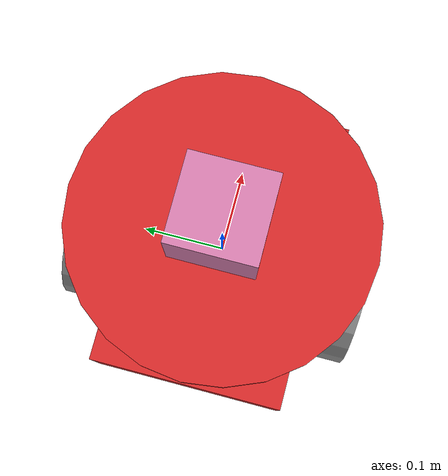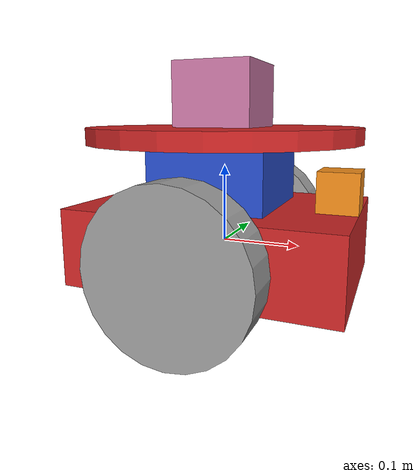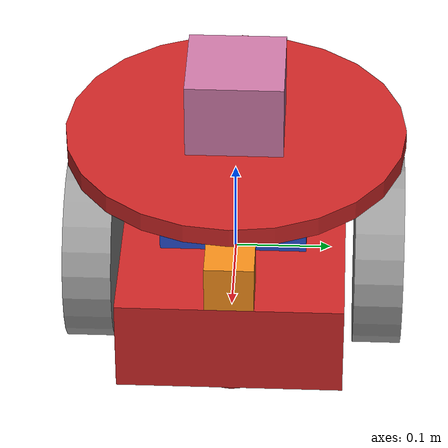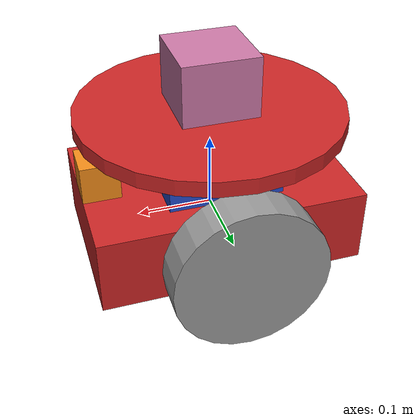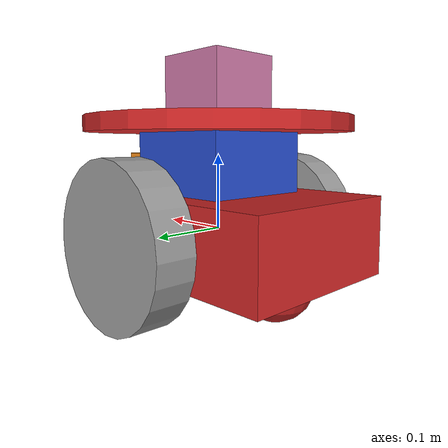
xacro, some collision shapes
<?xml version='1.0'?>

<robot name="my_robot" xmlns:xacro="http://www.ros.org/wiki/xacro">
<xacro:include filename="$(find my_robot)/urdf/my_robot.gazebo" />

  <material name="blue">
    <color rgba="0.203125 0.23828125 0.28515625 1.0"/>
  </material>
  <material name="grey">
    <color rgba="0.2 0.2 0.2 1.0"/>
  </material>
  <material name="orange">
    <color rgba="1.0 0.423529411765 0.0392156862745 1.0"/>
  </material>
  <material name="red">
    <color rgba="0.80078125 0.12890625 0.1328125 1.0"/>
  </material>
  <material name="white">
    <color rgba="0.95 0.95 0.95 0.95"/>
  </material>

  <gazebo reference="chassis">
    <material>Gazebo/Red</material>
  </gazebo>
  <gazebo reference="camera">
    <material>Gazebo/Orange</material>
  </gazebo>
  <gazebo reference="right_wheel">
    <material>Gazebo/Grey</material>
  </gazebo>
  <gazebo reference="left_wheel">
    <material>Gazebo/Grey</material>
  </gazebo>
  <gazebo reference="block_on_chassis">
    <material>Gazebo/Blue</material>
  </gazebo>
  <gazebo reference="disk_on_block">
    <material>Gazebo/Red</material>
  </gazebo>
  <gazebo reference="right_wheel">
    <material>Gazebo/Grey</material>
  </gazebo>
  <gazebo reference="left_wheel">
    <material>Gazebo/Grey</material>
  </gazebo>

  <link name="robot_footprint"></link>

  <joint name="robot_footprint_joint" type="fixed">
    <origin xyz="0 0 0" rpy="0 0 0" />
    <parent link="robot_footprint"/>
    <child link="chassis" />
  </joint>

  <joint type="continuous" name="left_wheel_hinge">
    <origin xyz="0 0.15 0" rpy="0 0 0"/>
    <child link="left_wheel"/>
    <parent link="chassis"/>
    <axis xyz="0 1 0" rpy="0 0 0"/>
    <limit effort="10000" velocity="1000"/>
    <dynamics damping="1.0" friction="1.0"/>
  </joint>

  <joint type="continuous" name="right_wheel_hinge">
    <origin xyz="0 -0.15 0" rpy="0 0 0"/>
    <child link="right_wheel"/>
    <parent link="chassis"/>
    <axis xyz="0 1 0" rpy="0 0 0"/>
    <limit effort="10000" velocity="1000"/>
    <dynamics damping="1.0" friction="1.0"/>
  </joint>

  <joint name="camera_joint" type="fixed">
    <origin xyz="0.15 0 0.075" rpy="0 0 0" />
    <parent link="chassis"/>
    <axis xyz="0 1 0" rpy="0 0 0"/>
    <child link="camera" />
  </joint>

  <joint name="hokuyo_joint" type="fixed">
    <origin xyz="0 0 0.09" rpy="0 0 0" />
    <parent link="block_on_chassis"/>
    <axis xyz="0 1 0" rpy="0 0 0"/>
    <child link="hokuyo" />
  </joint>

  <joint name="block_on_chasis_joint" type="fixed">
    <origin xyz="0.0 0 0.09" rpy="0 0 0" />
    <parent link="chassis"/>
    <axis xyz="0 1 0" rpy="0 0 0"/>
    <child link="block_on_chassis" />
  </joint>

  <joint name="disk_on_block_joint" type="fixed">
    <origin xyz="0 0 0.05" rpy="0 0 0"/>
    <child link="disk_on_block"/>
    <parent link="block_on_chassis"/>
    <axis xyz="0 1 0" rpy="0 0 0"/>
  </joint>

  <joint name="camera_optical_joint" type="fixed">
    <origin xyz="0 0 0" rpy="-1.5707 0 -1.5707"/>
    <parent link="camera"/>
    <child link="camera_optical"/>
  </joint>

  <link name="camera_optical">
  </link>

  <link name='chassis'>
    <pose>0 0 0.1 0 0 0</pose>

    <inertial>
      <mass value="15.0"/>
      <origin xyz="0.0 0 0" rpy=" 0 0 0"/>
      <inertia
          ixx="0.1" ixy="0" ixz="0"
          iyy="0.1" iyz="0"
          izz="0.1"
      />
    </inertial>

    <collision name='collision'>
      <origin xyz="0 0 0" rpy=" 0 0 0"/>
      <geometry>
        <box size=".35 .23 .1"/>
      </geometry>
    </collision>

    <visual name='chassis_visual'>
      <origin xyz="0 0 0" rpy=" 0 0 0"/>
      <geometry>
        <box size=".35 .23 .1"/>
      </geometry>
    </visual>

    <collision name='back_caster_collision'>
      <origin xyz="-0.10 0 -0.05" rpy=" 0 0 0"/>
      <geometry>
        <sphere radius="0.0499"/>
      </geometry>
    </collision>

    <visual name='back_caster_visual'>
      <origin xyz="-0.10 0 -0.05" rpy=" 0 0 0"/>
      <geometry>
        <sphere radius="0.05"/>
      </geometry>
    </visual>

    <collision name='front_caster_collision'>
      <origin xyz="0.10 0 -0.05" rpy=" 0 0 0"/>
      <geometry>
        <sphere radius="0.0499"/>
      </geometry>
    </collision>

    <visual name='front_caster_visual'>
      <origin xyz="0.10 0 -0.05" rpy=" 0 0 0"/>
      <geometry>
        <sphere radius="0.05"/>
      </geometry>
    </visual>
  </link>

  <link name='left_wheel'>

  <inertial>
      <mass value="5.0"/>
      <origin xyz="0 0 0" rpy="0 1.5707 1.5707" />
      <inertia
          ixx="0.1" ixy="0" ixz="0"
          iyy="0.1" iyz="0"
          izz="0.1"
      />
    </inertial>

  <collision name='left_wheel_collision'>
      <origin xyz="0 0 0" rpy="0 1.5707 1.5707" />
      <geometry>
        <cylinder radius="0.1" length="0.05"/>
      </geometry>
    </collision>

  <visual name='left_wheel_visual'>
      <origin xyz="0 0 0" rpy="0 1.5707 1.5707" />
      <geometry>
        <cylinder radius="0.1" length="0.05"/>
      </geometry>
    </visual>
  </link>

  <link name='right_wheel'>

  <inertial>
      <mass value="5.0"/>
      <origin xyz="0 0 0" rpy="0 1.5707 1.5707" />
      <inertia
          ixx="0.1" ixy="0" ixz="0"
          iyy="0.1" iyz="0"
          izz="0.1"
      />
    </inertial>

  <collision name='right_wheel_collision'>
      <origin xyz="0 0 0" rpy="0 1.5707 1.5707" />
      <geometry>
        <cylinder radius="0.1" length="0.05"/>
      </geometry>
    </collision>

  <visual name='right_wheel_visual'>
      <origin xyz="0 0 0" rpy="0 1.5707 1.5707" />
      <geometry>
        <cylinder radius="0.1" length="0.05"/>
      </geometry>
    </visual>
  </link>

  <link name='camera'>

  <inertial>
      <mass value="0.1"/>
      <origin xyz="0 0 0" rpy="0 0 0" />
      <inertia
          ixx="0.000001" ixy="0" ixz="0"
          iyy="0.000001" iyz="0"
          izz="0.000001"
      />
    </inertial>

  <collision name='camera_collision'>
      <origin xyz="0 0 0" rpy="0 0 0" />
      <geometry>
        <box size=".05 .05 .05"/>
      </geometry>
    </collision>

  <visual name='camera_visual'>
      <origin xyz="0 0 0" rpy="0 0 0" />
      <geometry>
        <box size=".05 .05 .05"/>
      </geometry>
    </visual>
  </link>

  <link name='hokuyo'>

  <inertial>
      <mass value=".00001"/>
      <origin xyz="0 0 0" rpy="0 0 0" />
      <inertia
          ixx="0.000001" ixy="0" ixz="0"
          iyy="0.000001" iyz="0"
          izz="0.000001"
      />
    </inertial>

  <collision name='hokuyo_collision'>
      <origin xyz="0 0 0" rpy="0 0 0" />
      <geometry>
        <box size="0.1 0.1 0.1"/>
      </geometry>
    </collision>

  <visual name='hokuyo_visual'>
      <origin xyz="0 0 0" rpy="0 0 0" />
      <geometry>
        <mesh filename = "package://my_robot/meshes/hokuyo.dae"/>
      </geometry>
    </visual>
  </link>

  <link name='block_on_chassis'>
    <pose>0 0 0.1 0 0 0</pose>

    <inertial>
      <mass value="2.0"/>
      <origin xyz="0.0 0 0" rpy=" 0 0 0"/>
      <inertia
          ixx="0.1" ixy="0" ixz="0"
          iyy="0.1" iyz="0"
          izz="0.1"
      />
    </inertial>

    <collision name='block_on_chassis_collision'>
      <origin xyz="0 0 0" rpy=" 0 0 0"/>
      <geometry>
        <box size=".15 .15 .08"/>
      </geometry>
    </collision>

    <visual name='block_on_chassis_visual'>
      <origin xyz="0 0 0" rpy=" 0 0 0"/>
      <geometry>
        <box size=".15 .15 .08"/>
      </geometry>
    </visual>
  </link>

  <link name='disk_on_block'>

    <inertial>
      <mass value="3.0"/>
      <origin xyz="0 0 0" rpy="0 0 0" />
      <inertia
          ixx="0.1" ixy="0" ixz="0"
          iyy="0.1" iyz="0"
          izz="0.1"
      />
    </inertial>

    <collision name='disk_on_block_collision'>
      <origin xyz="0 0 0" rpy="0 0 0" />
      <geometry>
        <cylinder radius="0.15" length="0.02"/>
      </geometry>
    </collision>

    <visual name='disk_on_block_visual'>
      <origin xyz="0 0 0" rpy="0 0 0" />
      <geometry>
        <cylinder radius="0.175" length="0.02"/>
      </geometry>
    </visual>
  </link>

</robot>
